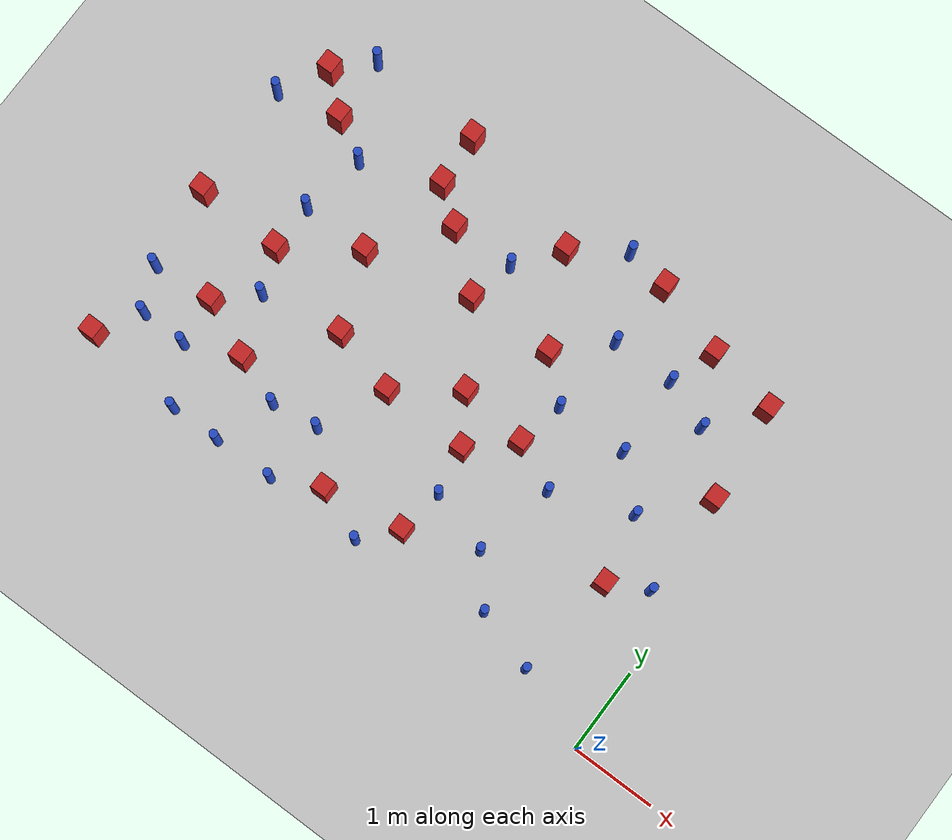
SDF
<sdf version="1.6">
 <world name="default">
  <model name="ground_plane">
   <static>1</static>
   <link name="link">
    <collision name="collision">
     <geometry><plane><normal>0 0 1</normal><size>100 100</size></plane></geometry>
     <surface><friction><ode><mu>100</mu><mu2>50</mu2></ode></friction></surface>
    </collision>
    <visual name="visual">
     <cast_shadows>0</cast_shadows>
     <geometry><plane><normal>0 0 1</normal><size>100 100</size></plane></geometry>
     <material>
      <ambient>1.0 1.0 1.0 1.0</ambient>
      <diffuse>0.8 0.8 0.8 1.0</diffuse>
      <specular>0.01 0.01 0.01 1.000000</specular>
     </material>
    </visual>
   </link>
  </model>
  <model name="pole_obstacle2">
   <static>true</static>
   <pose>-6.78596808502 1.45524734911 -3.09024884793e-07 -7.19054271912e-07 -2.11315075124e-07 -1.93935509261e-07</pose>
   <link name="link">
    <pose>0 0 0.3 0 -0 0</pose>
    <inertial>
     <mass>1</mass>
     <inertia><ixx>0.145833</ixx><ixy>0</ixy><ixz>0</ixz><iyy>0.145833</iyy><iyz>0</iyz><izz>0.125</izz></inertia>
    </inertial>
    <collision name="collision">
     <geometry><cylinder><radius>0.05</radius><length>.6</length></cylinder></geometry>
    </collision>
    <visual name="visual">
     <geometry><cylinder><radius>0.05</radius><length>.6</length></cylinder></geometry>
     <material>
      <script><name>Gazebo/Blue</name><uri>file://media/materials/scripts/gazebo.material</uri></script>
     </material>
    </visual>
   </link>
  </model>
  <model name="pole_obstacle3">
   <static>true</static>
   <pose>-0.961101204627 3.58513659789 -3.09024884793e-07 -7.19054271912e-07 -2.11315075131e-07 -1.93935509264e-07</pose>
   <link name="link">
    <pose>0 0 0.3 0 -0 0</pose>
    <inertial>
     <mass>1</mass>
     <inertia><ixx>0.145833</ixx><ixy>0</ixy><ixz>0</ixz><iyy>0.145833</iyy><iyz>0</iyz><izz>0.125</izz></inertia>
    </inertial>
    <collision name="collision">
     <geometry><cylinder><radius>0.05</radius><length>.6</length></cylinder></geometry>
    </collision>
    <visual name="visual">
     <geometry><cylinder><radius>0.05</radius><length>.6</length></cylinder></geometry>
     <material>
      <script><name>Gazebo/Blue</name><uri>file://media/materials/scripts/gazebo.material</uri></script>
     </material>
    </visual>
   </link>
  </model>
  <model name="pole_obstacle5">
   <static>true</static>
   <pose>-4.83515867426 1.01069919026 -3.09024884793e-07 -7.19054271912e-07 -2.11315075124e-07 -1.9393550926e-07</pose>
   <link name="link">
    <pose>0 0 0.3 0 -0 0</pose>
    <inertial>
     <mass>1</mass>
     <inertia><ixx>0.145833</ixx><ixy>0</ixy><ixz>0</ixz><iyy>0.145833</iyy><iyz>0</iyz><izz>0.125</izz></inertia>
    </inertial>
    <collision name="collision">
     <geometry><cylinder><radius>0.05</radius><length>.6</length></cylinder></geometry>
    </collision>
    <visual name="visual">
     <geometry><cylinder><radius>0.05</radius><length>.6</length></cylinder></geometry>
     <material>
      <script><name>Gazebo/Blue</name><uri>file://media/materials/scripts/gazebo.material</uri></script>
     </material>
    </visual>
   </link>
  </model>
  <model name="pole_obstacle6">
   <static>true</static>
   <pose>-2.80028451918 1.29856540325 -3.09024884793e-07 -7.19054271912e-07 -2.11315075122e-07 -1.93935509259e-07</pose>
   <link name="link">
    <pose>0 0 0.3 0 -0 0</pose>
    <inertial>
     <mass>1</mass>
     <inertia><ixx>0.145833</ixx><ixy>0</ixy><ixz>0</ixz><iyy>0.145833</iyy><iyz>0</iyz><izz>0.125</izz></inertia>
    </inertial>
    <collision name="collision">
     <geometry><cylinder><radius>0.05</radius><length>.6</length></cylinder></geometry>
    </collision>
    <visual name="visual">
     <geometry><cylinder><radius>0.05</radius><length>.6</length></cylinder></geometry>
     <material>
      <script><name>Gazebo/Blue</name><uri>file://media/materials/scripts/gazebo.material</uri></script>
     </material>
    </visual>
   </link>
  </model>
  <model name="pole_obstacle20">
   <static>true</static>
   <pose>-3.68432431921 3.78702391923 -3.09024884793e-07 -7.19054271912e-07 -2.11315075128e-07 -1.93935509262e-07</pose>
   <link name="link">
    <pose>0 0 0.3 0 -0 0</pose>
    <inertial>
     <mass>1</mass>
     <inertia><ixx>0.145833</ixx><ixy>0</ixy><ixz>0</ixz><iyy>0.145833</iyy><iyz>0</iyz><izz>0.125</izz></inertia>
    </inertial>
    <collision name="collision">
     <geometry><cylinder><radius>0.05</radius><length>.6</length></cylinder></geometry>
    </collision>
    <visual name="visual">
     <geometry><cylinder><radius>0.05</radius><length>.6</length></cylinder></geometry>
     <material>
      <script><name>Gazebo/Blue</name><uri>file://media/materials/scripts/gazebo.material</uri></script>
     </material>
    </visual>
   </link>
  </model>
  <model name="pole_obstacle30">
   <static>true</static>
   <pose>-2.32471958937 2.85050459554 -3.09024884793e-07 -7.19054271912e-07 -2.11315075144e-07 -1.93935509271e-07</pose>
   <link name="link">
    <pose>0 0 0.3 0 -0 0</pose>
    <inertial>
     <mass>1</mass>
     <inertia><ixx>0.145833</ixx><ixy>0</ixy><ixz>0</ixz><iyy>0.145833</iyy><iyz>0</iyz><izz>0.125</izz></inertia>
    </inertial>
    <collision name="collision">
     <geometry><cylinder><radius>0.05</radius><length>.6</length></cylinder></geometry>
    </collision>
    <visual name="visual">
     <geometry><cylinder><radius>0.05</radius><length>.6</length></cylinder></geometry>
     <material>
      <script><name>Gazebo/Blue</name><uri>file://media/materials/scripts/gazebo.material</uri></script>
     </material>
    </visual>
   </link>
  </model>
  <model name="square_post_obstacle36">
   <static>true</static>
   <pose>-0.804968848197 1.59948668566 -4.36207812815e-07 3.75137919937e-06 9.77721102514e-07 2.47381364184e-05</pose>
   <link name="link">
    <pose>0 0 0.25 0 -0 0</pose>
    <inertial>
     <mass>100</mass>
     <inertia>
      <ixx>0.166667</ixx>
      <ixy>0</ixy>
      <ixz>0</ixz>
      <iyy>0.166667</iyy>
      <iyz>0</iyz>
      <izz>0.166667</izz>
     </inertia>
    </inertial>
    <collision name="collision"><geometry><box><size>.2 .2 .5</size></box></geometry></collision>
    <visual name="visual">
     <geometry><box><size>.2 .2 .5</size></box></geometry>
     <material>
      <script><name>Gazebo/Red</name><uri>file://media/materials/scripts/gazebo.material</uri></script>
     </material>
    </visual>
   </link>
  </model>
  <model name="square_post_obstacle39">
   <static>true</static>
   <pose>-6.06323528533 1.51608363607 -4.36207812815e-07 3.75137919937e-06 9.77721102514e-07 2.47381364184e-05</pose>
   <link name="link">
    <pose>0 0 0.25 0 -0 0</pose>
    <inertial>
     <mass>100</mass>
     <inertia>
      <ixx>0.166667</ixx>
      <ixy>0</ixy>
      <ixz>0</ixz>
      <iyy>0.166667</iyy>
      <iyz>0</iyz>
      <izz>0.166667</izz>
     </inertia>
    </inertial>
    <collision name="collision"><geometry><box><size>.2 .2 .5</size></box></geometry></collision>
    <visual name="visual">
     <geometry><box><size>.2 .2 .5</size></box></geometry>
     <material>
      <script><name>Gazebo/Red</name><uri>file://media/materials/scripts/gazebo.material</uri></script>
     </material>
    </visual>
   </link>
  </model>
  <model name="pole_obstacle54">
   <static>true</static>
   <pose>-5.72302995833 3.72746954499 -3.09024884793e-07 -7.19054271912e-07 -2.11315075144e-07 -1.93935509269e-07</pose>
   <link name="link">
    <pose>0 0 0.3 0 -0 0</pose>
    <inertial>
     <mass>1</mass>
     <inertia><ixx>0.145833</ixx><ixy>0</ixy><ixz>0</ixz><iyy>0.145833</iyy><iyz>0</iyz><izz>0.125</izz></inertia>
    </inertial>
    <collision name="collision">
     <geometry><cylinder><radius>0.05</radius><length>.6</length></cylinder></geometry>
    </collision>
    <visual name="visual">
     <geometry><cylinder><radius>0.05</radius><length>.6</length></cylinder></geometry>
     <material>
      <script><name>Gazebo/Blue</name><uri>file://media/materials/scripts/gazebo.material</uri></script>
     </material>
    </visual>
   </link>
  </model>
  <model name="pole_obstacle60">
   <static>true</static>
   <pose>-0.359332953863 1.83079656918 -3.09024884793e-07 -7.19054271912e-07 -2.11315075135e-07 -1.93935509265e-07</pose>
   <link name="link">
    <pose>0 0 0.3 0 -0 0</pose>
    <inertial>
     <mass>1</mass>
     <inertia><ixx>0.145833</ixx><ixy>0</ixy><ixz>0</ixz><iyy>0.145833</iyy><iyz>0</iyz><izz>0.125</izz></inertia>
    </inertial>
    <collision name="collision">
     <geometry><cylinder><radius>0.05</radius><length>.6</length></cylinder></geometry>
    </collision>
    <visual name="visual">
     <geometry><cylinder><radius>0.05</radius><length>.6</length></cylinder></geometry>
     <material>
      <script><name>Gazebo/Blue</name><uri>file://media/materials/scripts/gazebo.material</uri></script>
     </material>
    </visual>
   </link>
  </model>
  <model name="square_post_obstacle47">
   <static>true</static>
   <pose>-5.05324820002 2.9573249001 -4.36207812815e-07 3.75137919937e-06 9.77721102514e-07 2.47381364184e-05</pose>
   <link name="link">
    <pose>0 0 0.25 0 -0 0</pose>
    <inertial>
     <mass>100</mass>
     <inertia>
      <ixx>0.166667</ixx>
      <ixy>0</ixy>
      <ixz>0</ixz>
      <iyy>0.166667</iyy>
      <iyz>0</iyz>
      <izz>0.166667</izz>
     </inertia>
    </inertial>
    <collision name="collision"><geometry><box><size>.2 .2 .5</size></box></geometry></collision>
    <visual name="visual">
     <geometry><box><size>.2 .2 .5</size></box></geometry>
     <material>
      <script><name>Gazebo/Red</name><uri>file://media/materials/scripts/gazebo.material</uri></script>
     </material>
    </visual>
   </link>
  </model>
  <model name="square_post_obstacle52">
   <static>true</static>
   <pose>-3.2393999905 2.37383073645 -4.36207812815e-07 3.75137919937e-06 9.77721102514e-07 2.47381364184e-05</pose>
   <link name="link">
    <pose>0 0 0.25 0 -0 0</pose>
    <inertial>
     <mass>100</mass>
     <inertia>
      <ixx>0.166667</ixx>
      <ixy>0</ixy>
      <ixz>0</ixz>
      <iyy>0.166667</iyy>
      <iyz>0</iyz>
      <izz>0.166667</izz>
     </inertia>
    </inertial>
    <collision name="collision"><geometry><box><size>.2 .2 .5</size></box></geometry></collision>
    <visual name="visual">
     <geometry><box><size>.2 .2 .5</size></box></geometry>
     <material>
      <script><name>Gazebo/Red</name><uri>file://media/materials/scripts/gazebo.material</uri></script>
     </material>
    </visual>
   </link>
  </model>
  <model name="pole_obstacle78">
   <static>true</static>
   <pose>-4.36584120327 0.351301023645 -3.09024884793e-07 -7.19054271912e-07 -2.11315075138e-07 -1.93935509266e-07</pose>
   <link name="link">
    <pose>0 0 0.3 0 -0 0</pose>
    <inertial>
     <mass>1</mass>
     <inertia><ixx>0.145833</ixx><ixy>0</ixy><ixz>0</ixz><iyy>0.145833</iyy><iyz>0</iyz><izz>0.125</izz></inertia>
    </inertial>
    <collision name="collision">
     <geometry><cylinder><radius>0.05</radius><length>.6</length></cylinder></geometry>
    </collision>
    <visual name="visual">
     <geometry><cylinder><radius>0.05</radius><length>.6</length></cylinder></geometry>
     <material>
      <script><name>Gazebo/Blue</name><uri>file://media/materials/scripts/gazebo.material</uri></script>
     </material>
    </visual>
   </link>
  </model>
  <model name="pole_obstacle88">
   <static>true</static>
   <pose>-5.07652942125 0.332671600665 -3.09024884793e-07 -7.19054271912e-07 -2.11315075138e-07 -1.93935509266e-07</pose>
   <link name="link">
    <pose>0 0 0.3 0 -0 0</pose>
    <inertial>
     <mass>1</mass>
     <inertia><ixx>0.145833</ixx><ixy>0</ixy><ixz>0</ixz><iyy>0.145833</iyy><iyz>0</iyz><izz>0.125</izz></inertia>
    </inertial>
    <collision name="collision">
     <geometry><cylinder><radius>0.05</radius><length>.6</length></cylinder></geometry>
    </collision>
    <visual name="visual">
     <geometry><cylinder><radius>0.05</radius><length>.6</length></cylinder></geometry>
     <material>
      <script><name>Gazebo/Blue</name><uri>file://media/materials/scripts/gazebo.material</uri></script>
     </material>
    </visual>
   </link>
  </model>
  <model name="square_post_obstacle83">
   <static>true</static>
   <pose>-3.9280339289 1.86995543009 -4.36207812815e-07 3.75137919937e-06 9.77721102514e-07 2.47381364184e-05</pose>
   <link name="link">
    <pose>0 0 0.25 0 -0 0</pose>
    <inertial>
     <mass>100</mass>
     <inertia>
      <ixx>0.166667</ixx>
      <ixy>0</ixy>
      <ixz>0</ixz>
      <iyy>0.166667</iyy>
      <iyz>0</iyz>
      <izz>0.166667</izz>
     </inertia>
    </inertial>
    <collision name="collision"><geometry><box><size>.2 .2 .5</size></box></geometry></collision>
    <visual name="visual">
     <geometry><box><size>.2 .2 .5</size></box></geometry>
     <material>
      <script><name>Gazebo/Red</name><uri>file://media/materials/scripts/gazebo.material</uri></script>
     </material>
    </visual>
   </link>
  </model>
  <model name="square_post_obstacle85">
   <static>true</static>
   <pose>-3.81289332519 3.24851174229 -4.36207812815e-07 3.75137919937e-06 9.77721102514e-07 2.47381364184e-05</pose>
   <link name="link">
    <pose>0 0 0.25 0 -0 0</pose>
    <inertial>
     <mass>100</mass>
     <inertia>
      <ixx>0.166667</ixx>
      <ixy>0</ixy>
      <ixz>0</ixz>
      <iyy>0.166667</iyy>
      <iyz>0</iyz>
      <izz>0.166667</izz>
     </inertia>
    </inertial>
    <collision name="collision"><geometry><box><size>.2 .2 .5</size></box></geometry></collision>
    <visual name="visual">
     <geometry><box><size>.2 .2 .5</size></box></geometry>
     <material>
      <script><name>Gazebo/Red</name><uri>file://media/materials/scripts/gazebo.material</uri></script>
     </material>
    </visual>
   </link>
  </model>
  <model name="pole_obstacle92">
   <static>true</static>
   <pose>-6.24118659678 4.75962964047 -3.09024884793e-07 -7.19054271911e-07 -2.1131507516e-07 -1.93935509277e-07</pose>
   <link name="link">
    <pose>0 0 0.3 0 -0 0</pose>
    <inertial>
     <mass>1</mass>
     <inertia><ixx>0.145833</ixx><ixy>0</ixy><ixz>0</ixz><iyy>0.145833</iyy><iyz>0</iyz><izz>0.125</izz></inertia>
    </inertial>
    <collision name="collision">
     <geometry><cylinder><radius>0.05</radius><length>.6</length></cylinder></geometry>
    </collision>
    <visual name="visual">
     <geometry><cylinder><radius>0.05</radius><length>.6</length></cylinder></geometry>
     <material>
      <script><name>Gazebo/Blue</name><uri>file://media/materials/scripts/gazebo.material</uri></script>
     </material>
    </visual>
   </link>
  </model>
  <model name="square_post_obstacle90">
   <static>true</static>
   <pose>-1.33245380062 4.3326208566 -4.36207812815e-07 3.75137919937e-06 9.77721102514e-07 2.47381364184e-05</pose>
   <link name="link">
    <pose>0 0 0.25 0 -0 0</pose>
    <inertial>
     <mass>100</mass>
     <inertia>
      <ixx>0.166667</ixx>
      <ixy>0</ixy>
      <ixz>0</ixz>
      <iyy>0.166667</iyy>
      <iyz>0</iyz>
      <izz>0.166667</izz>
     </inertia>
    </inertial>
    <collision name="collision"><geometry><box><size>.2 .2 .5</size></box></geometry></collision>
    <visual name="visual">
     <geometry><box><size>.2 .2 .5</size></box></geometry>
     <material>
      <script><name>Gazebo/Red</name><uri>file://media/materials/scripts/gazebo.material</uri></script>
     </material>
    </visual>
   </link>
  </model>
  <model name="pole_obstacle101">
   <static>true</static>
   <pose>-3.22329047343 0.365847082208 -3.09024884793e-07 -7.19054271912e-07 -2.1131507512e-07 -1.93935509259e-07</pose>
   <link name="link">
    <pose>0 0 0.3 0 -0 0</pose>
    <inertial>
     <mass>1</mass>
     <inertia><ixx>0.145833</ixx><ixy>0</ixy><ixz>0</ixz><iyy>0.145833</iyy><iyz>0</iyz><izz>0.125</izz></inertia>
    </inertial>
    <collision name="collision">
     <geometry><cylinder><radius>0.05</radius><length>.6</length></cylinder></geometry>
    </collision>
    <visual name="visual">
     <geometry><cylinder><radius>0.05</radius><length>.6</length></cylinder></geometry>
     <material>
      <script><name>Gazebo/Blue</name><uri>file://media/materials/scripts/gazebo.material</uri></script>
     </material>
    </visual>
   </link>
  </model>
  <model name="square_post_obstacle97">
   <static>true</static>
   <pose>-6.60873912291 4.37311103182 -4.36207812815e-07 3.75137919937e-06 9.77721102514e-07 2.47381364184e-05</pose>
   <link name="link">
    <pose>0 0 0.25 0 -0 0</pose>
    <inertial>
     <mass>100</mass>
     <inertia>
      <ixx>0.166667</ixx>
      <ixy>0</ixy>
      <ixz>0</ixz>
      <iyy>0.166667</iyy>
      <iyz>0</iyz>
      <izz>0.166667</izz>
     </inertia>
    </inertial>
    <collision name="collision"><geometry><box><size>.2 .2 .5</size></box></geometry></collision>
    <visual name="visual">
     <geometry><box><size>.2 .2 .5</size></box></geometry>
     <material>
      <script><name>Gazebo/Red</name><uri>file://media/materials/scripts/gazebo.material</uri></script>
     </material>
    </visual>
   </link>
  </model>
  <model name="pole_obstacle113">
   <static>true</static>
   <pose>-2.71512957661 4.68792078805 -3.09024884793e-07 -7.19054271912e-07 -2.11315075134e-07 -1.93935509266e-07</pose>
   <link name="link">
    <pose>0 0 0.3 0 -0 0</pose>
    <inertial>
     <mass>1</mass>
     <inertia><ixx>0.145833</ixx><ixy>0</ixy><ixz>0</ixz><iyy>0.145833</iyy><iyz>0</iyz><izz>0.125</izz></inertia>
    </inertial>
    <collision name="collision">
     <geometry><cylinder><radius>0.05</radius><length>.6</length></cylinder></geometry>
    </collision>
    <visual name="visual">
     <geometry><cylinder><radius>0.05</radius><length>.6</length></cylinder></geometry>
     <material>
      <script><name>Gazebo/Blue</name><uri>file://media/materials/scripts/gazebo.material</uri></script>
     </material>
    </visual>
   </link>
  </model>
  <model name="square_post_obstacle118">
   <static>true</static>
   <pose>-5.85766163832 2.40455729761 -4.36207812815e-07 3.75137919937e-06 9.77721102514e-07 2.47381364184e-05</pose>
   <link name="link">
    <pose>0 0 0.25 0 -0 0</pose>
    <inertial>
     <mass>100</mass>
     <inertia>
      <ixx>0.166667</ixx>
      <ixy>0</ixy>
      <ixz>0</ixz>
      <iyy>0.166667</iyy>
      <iyz>0</iyz>
      <izz>0.166667</izz>
     </inertia>
    </inertial>
    <collision name="collision"><geometry><box><size>.2 .2 .5</size></box></geometry></collision>
    <visual name="visual">
     <geometry><box><size>.2 .2 .5</size></box></geometry>
     <material>
      <script><name>Gazebo/Red</name><uri>file://media/materials/scripts/gazebo.material</uri></script>
     </material>
    </visual>
   </link>
  </model>
  <model name="pole_obstacle120">
   <static>true</static>
   <pose>-5.66791512197 0.327144066213 -3.09024884793e-07 -7.19054271912e-07 -2.11315075138e-07 -1.93935509266e-07</pose>
   <link name="link">
    <pose>0 0 0.3 0 -0 0</pose>
    <inertial>
     <mass>1</mass>
     <inertia><ixx>0.145833</ixx><ixy>0</ixy><ixz>0</ixz><iyy>0.145833</iyy><iyz>0</iyz><izz>0.125</izz></inertia>
    </inertial>
    <collision name="collision">
     <geometry><cylinder><radius>0.05</radius><length>.6</length></cylinder></geometry>
    </collision>
    <visual name="visual">
     <geometry><cylinder><radius>0.05</radius><length>.6</length></cylinder></geometry>
     <material>
      <script><name>Gazebo/Blue</name><uri>file://media/materials/scripts/gazebo.material</uri></script>
     </material>
    </visual>
   </link>
  </model>
  <model name="pole_obstacle126">
   <static>true</static>
   <pose>-6.01965682929 0.95193782683 -3.09024884793e-07 -7.19054271912e-07 -2.11315075121e-07 -1.93935509258e-07</pose>
   <link name="link">
    <pose>0 0 0.3 0 -0 0</pose>
    <inertial>
     <mass>1</mass>
     <inertia><ixx>0.145833</ixx><ixy>0</ixy><ixz>0</ixz><iyy>0.145833</iyy><iyz>0</iyz><izz>0.125</izz></inertia>
    </inertial>
    <collision name="collision">
     <geometry><cylinder><radius>0.05</radius><length>.6</length></cylinder></geometry>
    </collision>
    <visual name="visual">
     <geometry><cylinder><radius>0.05</radius><length>.6</length></cylinder></geometry>
     <material>
      <script><name>Gazebo/Blue</name><uri>file://media/materials/scripts/gazebo.material</uri></script>
     </material>
    </visual>
   </link>
  </model>
  <model name="square_post_obstacle122">
   <static>true</static>
   <pose>-0.392765408558 3.03596879208 -4.36207812815e-07 3.75137919937e-06 9.77721102514e-07 2.47381364184e-05</pose>
   <link name="link">
    <pose>0 0 0.25 0 -0 0</pose>
    <inertial>
     <mass>100</mass>
     <inertia>
      <ixx>0.166667</ixx>
      <ixy>0</ixy>
      <ixz>0</ixz>
      <iyy>0.166667</iyy>
      <iyz>0</iyz>
      <izz>0.166667</izz>
     </inertia>
    </inertial>
    <collision name="collision"><geometry><box><size>.2 .2 .5</size></box></geometry></collision>
    <visual name="visual">
     <geometry><box><size>.2 .2 .5</size></box></geometry>
     <material>
      <script><name>Gazebo/Red</name><uri>file://media/materials/scripts/gazebo.material</uri></script>
     </material>
    </visual>
   </link>
  </model>
  <model name="square_post_obstacle124">
   <static>true</static>
   <pose>-2.77632505357 3.26386017086 -4.36207812815e-07 3.75137919937e-06 9.77721102514e-07 2.47381364184e-05</pose>
   <link name="link">
    <pose>0 0 0.25 0 -0 0</pose>
    <inertial>
     <mass>100</mass>
     <inertia>
      <ixx>0.166667</ixx>
      <ixy>0</ixy>
      <ixz>0</ixz>
      <iyy>0.166667</iyy>
      <iyz>0</iyz>
      <izz>0.166667</izz>
     </inertia>
    </inertial>
    <collision name="collision"><geometry><box><size>.2 .2 .5</size></box></geometry></collision>
    <visual name="visual">
     <geometry><box><size>.2 .2 .5</size></box></geometry>
     <material>
      <script><name>Gazebo/Red</name><uri>file://media/materials/scripts/gazebo.material</uri></script>
     </material>
    </visual>
   </link>
  </model>
  <model name="pole_obstacle130">
   <static>true</static>
   <pose>-1.87884158256 2.03095872098 -3.09024884793e-07 -7.19054271912e-07 -2.11315075143e-07 -1.93935509269e-07</pose>
   <link name="link">
    <pose>0 0 0.3 0 -0 0</pose>
    <inertial>
     <mass>1</mass>
     <inertia><ixx>0.145833</ixx><ixy>0</ixy><ixz>0</ixz><iyy>0.145833</iyy><iyz>0</iyz><izz>0.125</izz></inertia>
    </inertial>
    <collision name="collision">
     <geometry><cylinder><radius>0.05</radius><length>.6</length></cylinder></geometry>
    </collision>
    <visual name="visual">
     <geometry><cylinder><radius>0.05</radius><length>.6</length></cylinder></geometry>
     <material>
      <script><name>Gazebo/Blue</name><uri>file://media/materials/scripts/gazebo.material</uri></script>
     </material>
    </visual>
   </link>
  </model>
  <model name="square_post_obstacle126">
   <static>true</static>
   <pose>-2.43076782737 2.28484295128 -4.36207812815e-07 3.75137919937e-06 9.77721102514e-07 2.47381364184e-05</pose>
   <link name="link">
    <pose>0 0 0.25 0 -0 0</pose>
    <inertial>
     <mass>100</mass>
     <inertia>
      <ixx>0.166667</ixx>
      <ixy>0</ixy>
      <ixz>0</ixz>
      <iyy>0.166667</iyy>
      <iyz>0</iyz>
      <izz>0.166667</izz>
     </inertia>
    </inertial>
    <collision name="collision"><geometry><box><size>.2 .2 .5</size></box></geometry></collision>
    <visual name="visual">
     <geometry><box><size>.2 .2 .5</size></box></geometry>
     <material>
      <script><name>Gazebo/Red</name><uri>file://media/materials/scripts/gazebo.material</uri></script>
     </material>
    </visual>
   </link>
  </model>
  <model name="square_post_obstacle127">
   <static>true</static>
   <pose>-6.87873759097 2.4369268892 -4.36207812815e-07 3.75137919937e-06 9.77721102514e-07 2.47381364184e-05</pose>
   <link name="link">
    <pose>0 0 0.25 0 -0 0</pose>
    <inertial>
     <mass>100</mass>
     <inertia>
      <ixx>0.166667</ixx>
      <ixy>0</ixy>
      <ixz>0</ixz>
      <iyy>0.166667</iyy>
      <iyz>0</iyz>
      <izz>0.166667</izz>
     </inertia>
    </inertial>
    <collision name="collision"><geometry><box><size>.2 .2 .5</size></box></geometry></collision>
    <visual name="visual">
     <geometry><box><size>.2 .2 .5</size></box></geometry>
     <material>
      <script><name>Gazebo/Red</name><uri>file://media/materials/scripts/gazebo.material</uri></script>
     </material>
    </visual>
   </link>
  </model>
  <model name="pole_obstacle137">
   <static>true</static>
   <pose>-1.47996435024 2.85947477688 -3.09024884793e-07 -7.19054271912e-07 -2.11315075132e-07 -1.93935509263e-07</pose>
   <link name="link">
    <pose>0 0 0.3 0 -0 0</pose>
    <inertial>
     <mass>1</mass>
     <inertia><ixx>0.145833</ixx><ixy>0</ixy><ixz>0</ixz><iyy>0.145833</iyy><iyz>0</iyz><izz>0.125</izz></inertia>
    </inertial>
    <collision name="collision">
     <geometry><cylinder><radius>0.05</radius><length>.6</length></cylinder></geometry>
    </collision>
    <visual name="visual">
     <geometry><cylinder><radius>0.05</radius><length>.6</length></cylinder></geometry>
     <material>
      <script><name>Gazebo/Blue</name><uri>file://media/materials/scripts/gazebo.material</uri></script>
     </material>
    </visual>
   </link>
  </model>
  <model name="pole_obstacle145">
   <static>true</static>
   <pose>-5.66478565116 1.9016752872 -3.09024884793e-07 -7.19054271912e-07 -2.11315075124e-07 -1.93935509261e-07</pose>
   <link name="link">
    <pose>0 0 0.3 0 -0 0</pose>
    <inertial>
     <mass>1</mass>
     <inertia><ixx>0.145833</ixx><ixy>0</ixy><ixz>0</ixz><iyy>0.145833</iyy><iyz>0</iyz><izz>0.125</izz></inertia>
    </inertial>
    <collision name="collision">
     <geometry><cylinder><radius>0.05</radius><length>.6</length></cylinder></geometry>
    </collision>
    <visual name="visual">
     <geometry><cylinder><radius>0.05</radius><length>.6</length></cylinder></geometry>
     <material>
      <script><name>Gazebo/Blue</name><uri>file://media/materials/scripts/gazebo.material</uri></script>
     </material>
    </visual>
   </link>
  </model>
  <model name="square_post_obstacle143">
   <static>true</static>
   <pose>-6.18901516724 3.99491232221 -4.36207812815e-07 3.75137919937e-06 9.77721102514e-07 2.47381364184e-05</pose>
   <link name="link">
    <pose>0 0 0.25 0 -0 0</pose>
    <inertial>
     <mass>100</mass>
     <inertia>
      <ixx>0.166667</ixx>
      <ixy>0</ixy>
      <ixz>0</ixz>
      <iyy>0.166667</iyy>
      <iyz>0</iyz>
      <izz>0.166667</izz>
     </inertia>
    </inertial>
    <collision name="collision"><geometry><box><size>.2 .2 .5</size></box></geometry></collision>
    <visual name="visual">
     <geometry><box><size>.2 .2 .5</size></box></geometry>
     <material>
      <script><name>Gazebo/Red</name><uri>file://media/materials/scripts/gazebo.material</uri></script>
     </material>
    </visual>
   </link>
  </model>
  <model name="square_post_obstacle144">
   <static>true</static>
   <pose>-4.83217959284 4.07724511527 -4.36207812815e-07 3.75137919937e-06 9.77721102514e-07 2.47381364184e-05</pose>
   <link name="link">
    <pose>0 0 0.25 0 -0 0</pose>
    <inertial>
     <mass>100</mass>
     <inertia>
      <ixx>0.166667</ixx>
      <ixy>0</ixy>
      <ixz>0</ixz>
      <iyy>0.166667</iyy>
      <iyz>0</iyz>
      <izz>0.166667</izz>
     </inertia>
    </inertial>
    <collision name="collision"><geometry><box><size>.2 .2 .5</size></box></geometry></collision>
    <visual name="visual">
     <geometry><box><size>.2 .2 .5</size></box></geometry>
     <material>
      <script><name>Gazebo/Red</name><uri>file://media/materials/scripts/gazebo.material</uri></script>
     </material>
    </visual>
   </link>
  </model>
  <model name="pole_obstacle150">
   <static>true</static>
   <pose>-1.64922461518 0.575561993083 -3.09024884793e-07 -7.19054271912e-07 -2.1131507513e-07 -1.93935509263e-07</pose>
   <link name="link">
    <pose>0 0 0.3 0 -0 0</pose>
    <inertial>
     <mass>1</mass>
     <inertia><ixx>0.145833</ixx><ixy>0</ixy><ixz>0</ixz><iyy>0.145833</iyy><iyz>0</iyz><izz>0.125</izz></inertia>
    </inertial>
    <collision name="collision">
     <geometry><cylinder><radius>0.05</radius><length>.6</length></cylinder></geometry>
    </collision>
    <visual name="visual">
     <geometry><cylinder><radius>0.05</radius><length>.6</length></cylinder></geometry>
     <material>
      <script><name>Gazebo/Blue</name><uri>file://media/materials/scripts/gazebo.material</uri></script>
     </material>
    </visual>
   </link>
  </model>
  <model name="square_post_obstacle146">
   <static>true</static>
   <pose>-4.87574852619 4.68970537894 -4.36207812815e-07 3.75137919937e-06 9.77721102514e-07 2.47381364184e-05</pose>
   <link name="link">
    <pose>0 0 0.25 0 -0 0</pose>
    <inertial>
     <mass>100</mass>
     <inertia>
      <ixx>0.166667</ixx>
      <ixy>0</ixy>
      <ixz>0</ixz>
      <iyy>0.166667</iyy>
      <iyz>0</iyz>
      <izz>0.166667</izz>
     </inertia>
    </inertial>
    <collision name="collision"><geometry><box><size>.2 .2 .5</size></box></geometry></collision>
    <visual name="visual">
     <geometry><box><size>.2 .2 .5</size></box></geometry>
     <material>
      <script><name>Gazebo/Red</name><uri>file://media/materials/scripts/gazebo.material</uri></script>
     </material>
    </visual>
   </link>
  </model>
  <model name="square_post_obstacle148">
   <static>true</static>
   <pose>-4.42896098669 3.76194557321 -4.36207812815e-07 3.75137919937e-06 9.77721102514e-07 2.47381364184e-05</pose>
   <link name="link">
    <pose>0 0 0.25 0 -0 0</pose>
    <inertial>
     <mass>100</mass>
     <inertia>
      <ixx>0.166667</ixx>
      <ixy>0</ixy>
      <ixz>0</ixz>
      <iyy>0.166667</iyy>
      <iyz>0</iyz>
      <izz>0.166667</izz>
     </inertia>
    </inertial>
    <collision name="collision"><geometry><box><size>.2 .2 .5</size></box></geometry></collision>
    <visual name="visual">
     <geometry><box><size>.2 .2 .5</size></box></geometry>
     <material>
      <script><name>Gazebo/Red</name><uri>file://media/materials/scripts/gazebo.material</uri></script>
     </material>
    </visual>
   </link>
  </model>
  <model name="pole_obstacle154">
   <static>true</static>
   <pose>-2.25728641115 3.78700470363 -3.09024884793e-07 -7.19054271912e-07 -2.11315075144e-07 -1.93935509271e-07</pose>
   <link name="link">
    <pose>0 0 0.3 0 -0 0</pose>
    <inertial>
     <mass>1</mass>
     <inertia><ixx>0.145833</ixx><ixy>0</ixy><ixz>0</ixz><iyy>0.145833</iyy><iyz>0</iyz><izz>0.125</izz></inertia>
    </inertial>
    <collision name="collision">
     <geometry><cylinder><radius>0.05</radius><length>.6</length></cylinder></geometry>
    </collision>
    <visual name="visual">
     <geometry><cylinder><radius>0.05</radius><length>.6</length></cylinder></geometry>
     <material>
      <script><name>Gazebo/Blue</name><uri>file://media/materials/scripts/gazebo.material</uri></script>
     </material>
    </visual>
   </link>
  </model>
  <model name="pole_obstacle164">
   <static>true</static>
   <pose>-6.56253975286 0.964626870608 -3.09024884793e-07 -7.19054271912e-07 -2.11315075121e-07 -1.93935509258e-07</pose>
   <link name="link">
    <pose>0 0 0.3 0 -0 0</pose>
    <inertial>
     <mass>1</mass>
     <inertia><ixx>0.145833</ixx><ixy>0</ixy><ixz>0</ixz><iyy>0.145833</iyy><iyz>0</iyz><izz>0.125</izz></inertia>
    </inertial>
    <collision name="collision">
     <geometry><cylinder><radius>0.05</radius><length>.6</length></cylinder></geometry>
    </collision>
    <visual name="visual">
     <geometry><cylinder><radius>0.05</radius><length>.6</length></cylinder></geometry>
     <material>
      <script><name>Gazebo/Blue</name><uri>file://media/materials/scripts/gazebo.material</uri></script>
     </material>
    </visual>
   </link>
  </model>
  <model name="square_post_obstacle159">
   <static>true</static>
   <pose>-4.7125747382 2.07229380437 -4.36207812815e-07 3.75137919937e-06 9.77721102514e-07 2.47381364184e-05</pose>
   <link name="link">
    <pose>0 0 0.25 0 -0 0</pose>
    <inertial>
     <mass>100</mass>
     <inertia>
      <ixx>0.166667</ixx>
      <ixy>0</ixy>
      <ixz>0</ixz>
      <iyy>0.166667</iyy>
      <iyz>0</iyz>
      <izz>0.166667</izz>
     </inertia>
    </inertial>
    <collision name="collision"><geometry><box><size>.2 .2 .5</size></box></geometry></collision>
    <visual name="visual">
     <geometry><box><size>.2 .2 .5</size></box></geometry>
     <material>
      <script><name>Gazebo/Red</name><uri>file://media/materials/scripts/gazebo.material</uri></script>
     </material>
    </visual>
   </link>
  </model>
  <model name="square_post_obstacle160">
   <static>true</static>
   <pose>-2.88509522638 0.753936433221 -4.36207812815e-07 3.75137919937e-06 9.77721102514e-07 2.47381364184e-05</pose>
   <link name="link">
    <pose>0 0 0.25 0 -0 0</pose>
    <inertial>
     <mass>100</mass>
     <inertia>
      <ixx>0.166667</ixx>
      <ixy>0</ixy>
      <ixz>0</ixz>
      <iyy>0.166667</iyy>
      <iyz>0</iyz>
      <izz>0.166667</izz>
     </inertia>
    </inertial>
    <collision name="collision"><geometry><box><size>.2 .2 .5</size></box></geometry></collision>
    <visual name="visual">
     <geometry><box><size>.2 .2 .5</size></box></geometry>
     <material>
      <script><name>Gazebo/Red</name><uri>file://media/materials/scripts/gazebo.material</uri></script>
     </material>
    </visual>
   </link>
  </model>
  <model name="square_post_obstacle170">
   <static>true</static>
   <pose>-3.82139647016 0.60728772711 -4.36207812815e-07 3.75137919937e-06 9.77721102514e-07 2.47381364184e-05</pose>
   <link name="link">
    <pose>0 0 0.25 0 -0 0</pose>
    <inertial>
     <mass>100</mass>
     <inertia>
      <ixx>0.166667</ixx>
      <ixy>0</ixy>
      <ixz>0</ixz>
      <iyy>0.166667</iyy>
      <iyz>0</iyz>
      <izz>0.166667</izz>
     </inertia>
    </inertial>
    <collision name="collision"><geometry><box><size>.2 .2 .5</size></box></geometry></collision>
    <visual name="visual">
     <geometry><box><size>.2 .2 .5</size></box></geometry>
     <material>
      <script><name>Gazebo/Red</name><uri>file://media/materials/scripts/gazebo.material</uri></script>
     </material>
    </visual>
   </link>
  </model>
  <model name="pole_obstacle179">
   <static>true</static>
   <pose>-2.07530861298 1.08075139886 -3.09024884793e-07 -7.19054271912e-07 -2.11315075122e-07 -1.93935509259e-07</pose>
   <link name="link">
    <pose>0 0 0.3 0 -0 0</pose>
    <inertial>
     <mass>1</mass>
     <inertia><ixx>0.145833</ixx><ixy>0</ixy><ixz>0</ixz><iyy>0.145833</iyy><iyz>0</iyz><izz>0.125</izz></inertia>
    </inertial>
    <collision name="collision">
     <geometry><cylinder><radius>0.05</radius><length>.6</length></cylinder></geometry>
    </collision>
    <visual name="visual">
     <geometry><cylinder><radius>0.05</radius><length>.6</length></cylinder></geometry>
     <material>
      <script><name>Gazebo/Blue</name><uri>file://media/materials/scripts/gazebo.material</uri></script>
     </material>
    </visual>
   </link>
  </model>
  <model name="pole_obstacle180">
   <static>true</static>
   <pose>-0.93075141805 0.356511916893 -3.09024884793e-07 -7.19054271912e-07 -2.11315075127e-07 -1.93935509262e-07</pose>
   <link name="link">
    <pose>0 0 0.3 0 -0 0</pose>
    <inertial>
     <mass>1</mass>
     <inertia><ixx>0.145833</ixx><ixy>0</ixy><ixz>0</ixz><iyy>0.145833</iyy><iyz>0</iyz><izz>0.125</izz></inertia>
    </inertial>
    <collision name="collision">
     <geometry><cylinder><radius>0.05</radius><length>.6</length></cylinder></geometry>
    </collision>
    <visual name="visual">
     <geometry><cylinder><radius>0.05</radius><length>.6</length></cylinder></geometry>
     <material>
      <script><name>Gazebo/Blue</name><uri>file://media/materials/scripts/gazebo.material</uri></script>
     </material>
    </visual>
   </link>
  </model>
  <model name="pole_obstacle181">
   <static>true</static>
   <pose>-6.9230149468 3.81736675914 -3.09024884793e-07 -7.19054271912e-07 -2.11315075144e-07 -1.93935509269e-07</pose>
   <link name="link">
    <pose>0 0 0.3 0 -0 0</pose>
    <inertial>
     <mass>1</mass>
     <inertia><ixx>0.145833</ixx><ixy>0</ixy><ixz>0</ixz><iyy>0.145833</iyy><iyz>0</iyz><izz>0.125</izz></inertia>
    </inertial>
    <collision name="collision">
     <geometry><cylinder><radius>0.05</radius><length>.6</length></cylinder></geometry>
    </collision>
    <visual name="visual">
     <geometry><cylinder><radius>0.05</radius><length>.6</length></cylinder></geometry>
     <material>
      <script><name>Gazebo/Blue</name><uri>file://media/materials/scripts/gazebo.material</uri></script>
     </material>
    </visual>
   </link>
  </model>
  <model name="pole_obstacle183">
   <static>true</static>
   <pose>-5.8596812906 2.96718428247 -3.09024884793e-07 -7.19054271912e-07 -2.11315075144e-07 -1.93935509269e-07</pose>
   <link name="link">
    <pose>0 0 0.3 0 -0 0</pose>
    <inertial>
     <mass>1</mass>
     <inertia><ixx>0.145833</ixx><ixy>0</ixy><ixz>0</ixz><iyy>0.145833</iyy><iyz>0</iyz><izz>0.125</izz></inertia>
    </inertial>
    <collision name="collision">
     <geometry><cylinder><radius>0.05</radius><length>.6</length></cylinder></geometry>
    </collision>
    <visual name="visual">
     <geometry><cylinder><radius>0.05</radius><length>.6</length></cylinder></geometry>
     <material>
      <script><name>Gazebo/Blue</name><uri>file://media/materials/scripts/gazebo.material</uri></script>
     </material>
    </visual>
   </link>
  </model>
  <model name="square_post_obstacle188">
   <static>true</static>
   <pose>-6.86506935976 0.469908044879 -4.36207812815e-07 3.75137919937e-06 9.77721102514e-07 2.47381364184e-05</pose>
   <link name="link">
    <pose>0 0 0.25 0 -0 0</pose>
    <inertial>
     <mass>100</mass>
     <inertia>
      <ixx>0.166667</ixx>
      <ixy>0</ixy>
      <ixz>0</ixz>
      <iyy>0.166667</iyy>
      <iyz>0</iyz>
      <izz>0.166667</izz>
     </inertia>
    </inertial>
    <collision name="collision"><geometry><box><size>.2 .2 .5</size></box></geometry></collision>
    <visual name="visual">
     <geometry><box><size>.2 .2 .5</size></box></geometry>
     <material>
      <script><name>Gazebo/Red</name><uri>file://media/materials/scripts/gazebo.material</uri></script>
     </material>
    </visual>
   </link>
  </model>
  <model name="pole_obstacle187">
   <static>true</static>
   <pose>-4.28853041153 1.08806212215 -3.09024884793e-07 -7.19054271912e-07 -2.11315075124e-07 -1.93935509261e-07</pose>
   <link name="link">
    <pose>0 0 0.3 0 -0 0</pose>
    <inertial>
     <mass>1</mass>
     <inertia><ixx>0.145833</ixx><ixy>0</ixy><ixz>0</ixz><iyy>0.145833</iyy><iyz>0</iyz><izz>0.125</izz></inertia>
    </inertial>
    <collision name="collision">
     <geometry><cylinder><radius>0.05</radius><length>.6</length></cylinder></geometry>
    </collision>
    <visual name="visual">
     <geometry><cylinder><radius>0.05</radius><length>.6</length></cylinder></geometry>
     <material>
      <script><name>Gazebo/Blue</name><uri>file://media/materials/scripts/gazebo.material</uri></script>
     </material>
    </visual>
   </link>
  </model>
  <model name="square_post_obstacle196">
   <static>true</static>
   <pose>-2.90134102832 1.84925690579 -4.36207812815e-07 3.75137919937e-06 9.77721102514e-07 2.47381364184e-05</pose>
   <link name="link">
    <pose>0 0 0.25 0 -0 0</pose>
    <inertial>
     <mass>100</mass>
     <inertia>
      <ixx>0.166667</ixx>
      <ixy>0</ixy>
      <ixz>0</ixz>
      <iyy>0.166667</iyy>
      <iyz>0</iyz>
      <izz>0.166667</izz>
     </inertia>
    </inertial>
    <collision name="collision"><geometry><box><size>.2 .2 .5</size></box></geometry></collision>
    <visual name="visual">
     <geometry><box><size>.2 .2 .5</size></box></geometry>
     <material>
      <script><name>Gazebo/Red</name><uri>file://media/materials/scripts/gazebo.material</uri></script>
     </material>
    </visual>
   </link>
  </model>
  <model name="square_post_obstacle202">
   <static>true</static>
   <pose>-0.506427311558 4.18092873556 -4.36207812815e-07 3.75137919937e-06 9.77721102514e-07 2.47381364184e-05</pose>
   <link name="link">
    <pose>0 0 0.25 0 -0 0</pose>
    <inertial>
     <mass>100</mass>
     <inertia>
      <ixx>0.166667</ixx>
      <ixy>0</ixy>
      <ixz>0</ixz>
      <iyy>0.166667</iyy>
      <iyz>0</iyz>
      <izz>0.166667</izz>
     </inertia>
    </inertial>
    <collision name="collision"><geometry><box><size>.2 .2 .5</size></box></geometry></collision>
    <visual name="visual">
     <geometry><box><size>.2 .2 .5</size></box></geometry>
     <material>
      <script><name>Gazebo/Red</name><uri>file://media/materials/scripts/gazebo.material</uri></script>
     </material>
    </visual>
   </link>
  </model>
  <model name="pole_obstacle194">
   <static>true</static>
   <pose>-0.974544358663 2.38734094717 -3.09024884793e-07 -7.19054271912e-07 -2.11315075131e-07 -1.93935509264e-07</pose>
   <link name="link">
    <pose>0 0 0.3 0 -0 0</pose>
    <inertial>
     <mass>1</mass>
     <inertia><ixx>0.145833</ixx><ixy>0</ixy><ixz>0</ixz><iyy>0.145833</iyy><iyz>0</iyz><izz>0.125</izz></inertia>
    </inertial>
    <collision name="collision">
     <geometry><cylinder><radius>0.05</radius><length>.6</length></cylinder></geometry>
    </collision>
    <visual name="visual">
     <geometry><cylinder><radius>0.05</radius><length>.6</length></cylinder></geometry>
     <material>
      <script><name>Gazebo/Blue</name><uri>file://media/materials/scripts/gazebo.material</uri></script>
     </material>
    </visual>
   </link>
  </model>
  <model name="square_post_obstacle207">
   <static>true</static>
   <pose>-3.3034661457 4.28942068247 -4.36207812815e-07 3.75137919937e-06 9.77721102514e-07 2.47381364184e-05</pose>
   <link name="link">
    <pose>0 0 0.25 0 -0 0</pose>
    <inertial>
     <mass>100</mass>
     <inertia>
      <ixx>0.166667</ixx>
      <ixy>0</ixy>
      <ixz>0</ixz>
      <iyy>0.166667</iyy>
      <iyz>0</iyz>
      <izz>0.166667</izz>
     </inertia>
    </inertial>
    <collision name="collision"><geometry><box><size>.2 .2 .5</size></box></geometry></collision>
    <visual name="visual">
     <geometry><box><size>.2 .2 .5</size></box></geometry>
     <material>
      <script><name>Gazebo/Red</name><uri>file://media/materials/scripts/gazebo.material</uri></script>
     </material>
    </visual>
   </link>
  </model>
  <model name="square_post_obstacle209">
   <static>true</static>
   <pose>-5.40344299499 1.2168595133 -4.36207812815e-07 3.75137919937e-06 9.77721102514e-07 2.47381364184e-05</pose>
   <link name="link">
    <pose>0 0 0.25 0 -0 0</pose>
    <inertial>
     <mass>100</mass>
     <inertia>
      <ixx>0.166667</ixx>
      <ixy>0</ixy>
      <ixz>0</ixz>
      <iyy>0.166667</iyy>
      <iyz>0</iyz>
      <izz>0.166667</izz>
     </inertia>
    </inertial>
    <collision name="collision"><geometry><box><size>.2 .2 .5</size></box></geometry></collision>
    <visual name="visual">
     <geometry><box><size>.2 .2 .5</size></box></geometry>
     <material>
      <script><name>Gazebo/Red</name><uri>file://media/materials/scripts/gazebo.material</uri></script>
     </material>
    </visual>
   </link>
  </model>
  <model name="pole_obstacle211">
   <static>true</static>
   <pose>-1.52548227904 3.79590460144 -3.09024884793e-07 -7.19054271912e-07 -2.11315075132e-07 -1.93935509263e-07</pose>
   <link name="link">
    <pose>0 0 0.3 0 -0 0</pose>
    <inertial>
     <mass>1</mass>
     <inertia><ixx>0.145833</ixx><ixy>0</ixy><ixz>0</ixz><iyy>0.145833</iyy><iyz>0</iyz><izz>0.125</izz></inertia>
    </inertial>
    <collision name="collision">
     <geometry><cylinder><radius>0.05</radius><length>.6</length></cylinder></geometry>
    </collision>
    <visual name="visual">
     <geometry><cylinder><radius>0.05</radius><length>.6</length></cylinder></geometry>
     <material>
      <script><name>Gazebo/Blue</name><uri>file://media/materials/scripts/gazebo.material</uri></script>
     </material>
    </visual>
   </link>
  </model>
  <model name="square_post_obstacle219">
   <static>true</static>
   <pose>-2.2009199448 4.60397997467 -4.36207812815e-07 3.75137919937e-06 9.77721102514e-07 2.47381364184e-05</pose>
   <link name="link">
    <pose>0 0 0.25 0 -0 0</pose>
    <inertial>
     <mass>100</mass>
     <inertia>
      <ixx>0.166667</ixx>
      <ixy>0</ixy>
      <ixz>0</ixz>
      <iyy>0.166667</iyy>
      <iyz>0</iyz>
      <izz>0.166667</izz>
     </inertia>
    </inertial>
    <collision name="collision"><geometry><box><size>.2 .2 .5</size></box></geometry></collision>
    <visual name="visual">
     <geometry><box><size>.2 .2 .5</size></box></geometry>
     <material>
      <script><name>Gazebo/Red</name><uri>file://media/materials/scripts/gazebo.material</uri></script>
     </material>
    </visual>
   </link>
  </model>
 </world>
</sdf>
